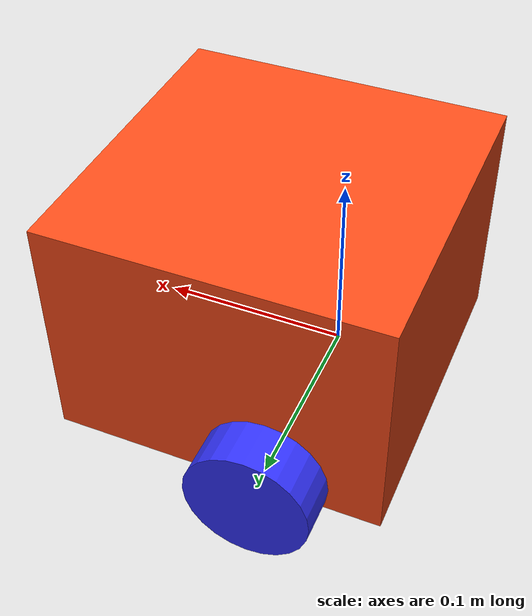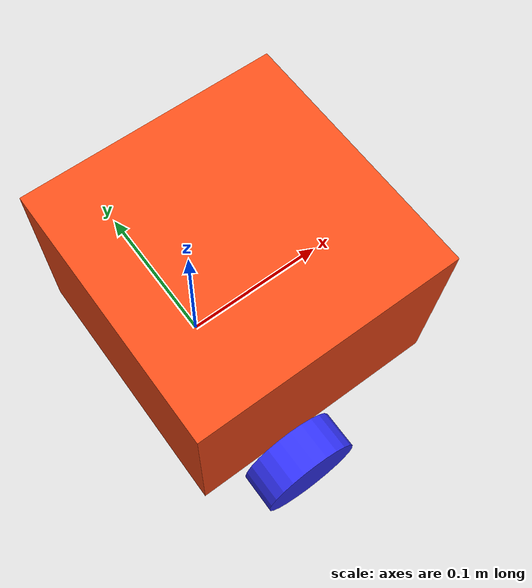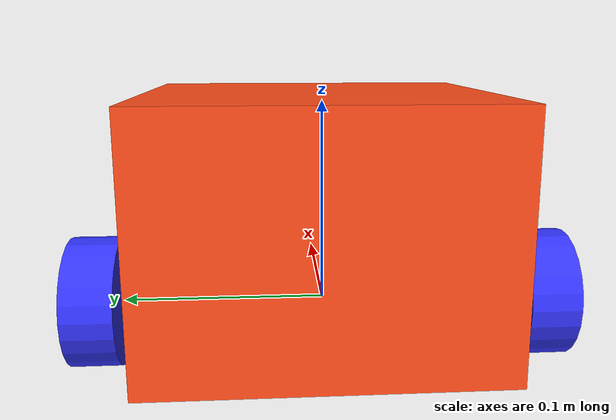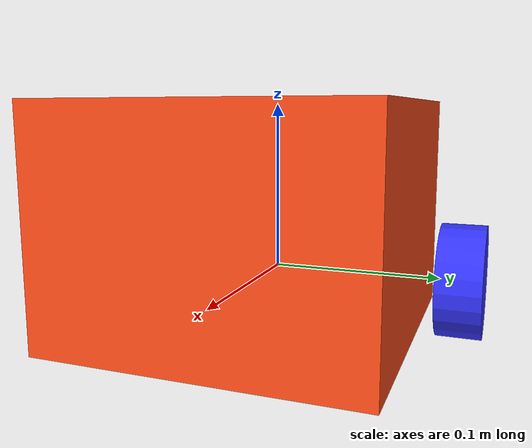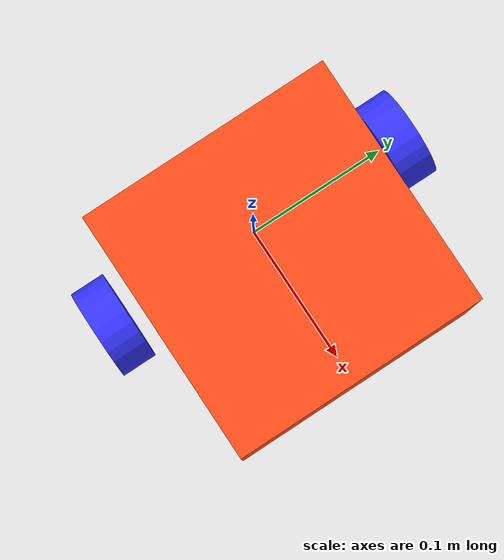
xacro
<?xml version="1.0"?>
<robot xmlns:xacro="http://www.ros.org/wiki/xacro" >

    <xacro:include filename="inertial_macros.xacro"/>

    <material name="white">
        <color rgba="1 1 1 1" />
    </material>

    <material name="orange">
        <color rgba="1 0.3 0.1 1"/>
    </material>

    <material name="blue">
        <color rgba="0.2 0.2 1 1"/>
    </material>

    <material name="black">
        <color rgba="0 0 0 1"/>
    </material>

    <!-- BASE LINK -->

    <link name="base_link">

    </link>

    <!-- BASE FOOTPRINT LINK -->
    <joint name="base_footprint_joint" type="fixed">
        <parent link="base_link"/>
        <child link="base_footprint"/>
        <origin xyz="0 0 0" rpy="0 0 0"/>
    </joint>

    <link name="base_footprint">
    </link>

    <!-- CHASSIS LINK -->

    <joint name="chassis_joint" type="fixed">
        <parent link="base_link"/>
        <child link="chassis"/>
        <origin xyz="-0.057 0 0"/>
    </joint>

    <link name="chassis">
        <visual>
            <origin xyz="0.09 0 0.0371"/>
            <geometry>
                <box size="0.18 0.18 0.130"/>
            </geometry>
            <material name="orange"/>
        </visual>
        <collision>
            <origin xyz="0.09 0 0.0371"/>
            <geometry>
                <box size="0.18 0.18 0.130"/>
            </geometry>
        </collision>
        <xacro:inertial_box mass="0.5" x="0.18" y="0.18" z="0.130">
            <origin xyz="0.09 0 0.0371" rpy="0 0 0"/>
        </xacro:inertial_box>
    </link>

    <!-- LEFT WHEEL LINK -->

    <joint name="left_wheel_joint" type="fixed">
        <parent link="base_link"/>
        <child link="left_wheel"/>
        <origin xyz="0 0.1125 0" rpy="-${pi/2} 0 0" />
        <axis xyz="0 0 1"/>
    </joint>

    <link name="left_wheel">
        <visual>
            <geometry>
                <cylinder radius="0.0325" length="0.025"/>
            </geometry>
            <material name="blue"/>
        </visual>
        <collision>
            <geometry>
                <cylinder radius="0.0325" length="0.025"/>
            </geometry>
        </collision>
        <xacro:inertial_cylinder mass="0.1" length="0.025" radius="0.0325">
            <origin xyz="0 0 0" rpy="0 0 0"/>
        </xacro:inertial_cylinder>
    </link>

    <!-- RIGHT WHEEL LINK -->

    <joint name="right_wheel_joint" type="fixed">
        <parent link="base_link"/>
        <child link="right_wheel"/>
        <origin xyz="0 -0.1125 0" rpy="${pi/2} 0 0" />
        <axis xyz="0 0 -1"/>
    </joint>

    <link name="right_wheel">
        <visual>
            <geometry>
                <cylinder radius="0.0325" length="0.025"/>
            </geometry>
            <material name="blue"/>
        </visual>
        <collision>
            <geometry>
                <cylinder radius="0.0325" length="0.025"/>
            </geometry>
        </collision>
        <xacro:inertial_cylinder mass="0.1" length="0.025" radius="0.0325">
            <origin xyz="0 0 0" rpy="0 0 0"/>
        </xacro:inertial_cylinder>
    </link>

    <!-- CASTER WHEEL LINK -->

    <joint name="caster_wheel_joint" type="fixed">
        <parent link="chassis"/>
        <child link="caster_wheel"/>
        <origin xyz="0.16 0 -0.0279"/>
    </joint>

    <link name="caster_wheel">
        <visual>
            <geometry>
                <sphere radius="0.0046"/>
            </geometry>
            <material name="black"/>
        </visual>
        <collision>
            <geometry>
                <sphere radius="0.0046"/>
            </geometry>
        </collision>
        <xacro:inertial_sphere mass="0.1" radius="0.0046">
            <origin xyz="0 0 0" rpy="0 0 0"/>
        </xacro:inertial_sphere>
    </link>

</robot>
